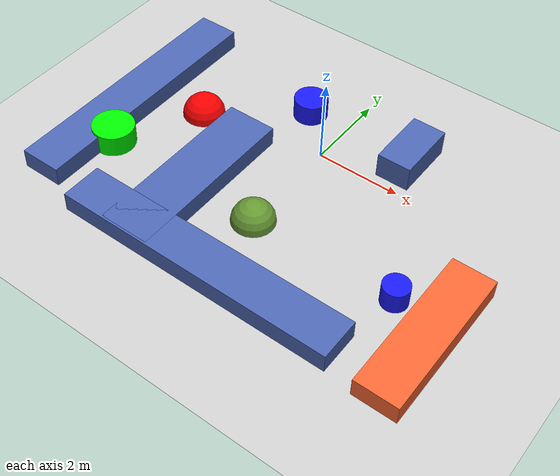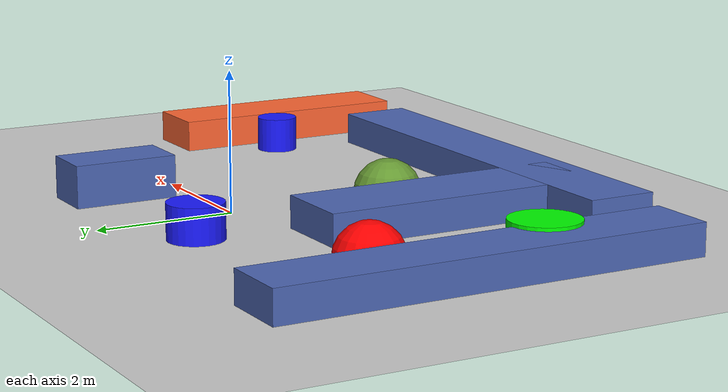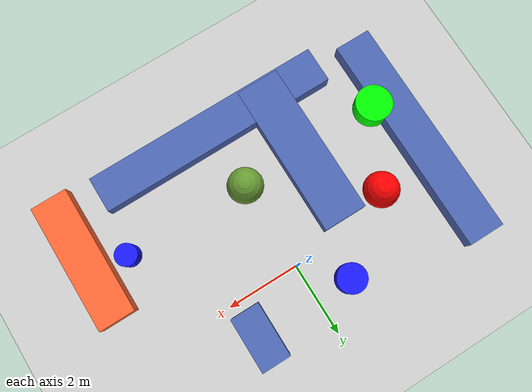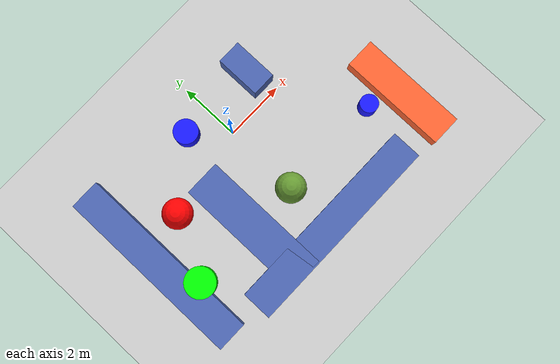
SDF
<sdf version="1.4">
 <world name="vrc_task_1">
  <scene><ambient>0.5 0.5 0.5 1.0</ambient><grid>true</grid><sky><clouds><speed>4</speed></clouds></sky></scene>
  <physics type="ode">
   <gravity>0 0 -9.81</gravity>
   <ode>
    <solver>
     <use_dynamic_moi_rescaling>true</use_dynamic_moi_rescaling>
     <type>quick</type>
     <iters>50</iters>
     <sor>1.0</sor>
    </solver>
    <constraints>
     <cfm>0.0</cfm>
     <erp>0.2</erp>
     <contact_max_correcting_vel>100.0</contact_max_correcting_vel>
     <contact_surface_layer>0.0</contact_surface_layer>
    </constraints>
   </ode>
   <real_time_update_rate>1000</real_time_update_rate>
   <max_step_size>0.001</max_step_size>
  </physics>
  <light type="directional" name="directional1">
   <pose>-6.5 -8 5 0.25 0 0</pose>
   <diffuse>1 1 1 1</diffuse>
   <specular>0.5 0.5 0.5 1</specular>
   <attenuation>
    <range>5</range>
    <constant>1</constant>
    <linear>0.01</linear>
    <quadratic>0.00</quadratic>
   </attenuation>
  </light>
  <light type="directional" name="directional2">
   <pose>-17 -2 7 0.7 0 -1.5</pose>
   <diffuse>0.5 0.5 0.5 0.5</diffuse>
   <specular>0.19 0.19 0.19 0.19</specular>
   <attenuation>
    <range>11</range>
    <constant>1</constant>
    <linear>0.01</linear>
    <quadratic>0.00</quadratic>
   </attenuation>
  </light>
  <light type="directional" name="directional3">
   <pose>-6.5 6 5 -0.7 0 0</pose>
   <diffuse>0.07 0.07 0.07 0.07</diffuse>
   <specular>0.07 0.07 0.07 0.07</specular>
   <attenuation>
    <range>10</range>
    <constant>1</constant>
    <linear>0.01</linear>
    <quadratic>0.00</quadratic>
   </attenuation>
  </light>
  <include><uri>model://ground_plane</uri></include>
  <model name="boxes">
   <link name="middle">
    <pose>-1.7 -2.5 0 0 0 0</pose>
    <collision name="collision"><geometry><box><size>1.2 4.3 0.9</size></box></geometry></collision>
    <visual name="visual">
     <geometry><box><size>1.2 4.3 0.9</size></box></geometry>
     <material>
      <ambient>0.3 0.4 0.7 1</ambient>
      <diffuse>0.3 0.4 0.7 1</diffuse>
      <specular>0.1 0.1 0.1 1</specular>
      <emissive>0 0 0 0</emissive>
     </material>
    </visual>
   </link>
   <link name="windowside">
    <pose>0 -4.2 0 0 0 0</pose>
    <collision name="collision"><geometry><box><size>2 1 0.9</size></box></geometry></collision>
    <visual name="visual">
     <geometry><box><size>6.7 1 0.9</size></box></geometry>
     <material>
      <ambient>0.5 0.3 0.1 1</ambient>
      <diffuse>0.3 0.4 0.7 1</diffuse>
      <specular>0.2 0.2 0.2 1</specular>
      <emissive>0 0 0 0</emissive>
     </material>
    </visual>
   </link>
   <link name="wallside">
    <pose>-4.5 -1.2 0 0 0 0</pose>
    <collision name="collision"><geometry><box><size>1 6.2 0.9</size></box></geometry></collision>
    <visual name="visual">
     <geometry><box><size>1 6.2 0.9</size></box></geometry>
     <material>
      <ambient>0.65 0.2 0.2 1</ambient>
      <diffuse>0.3 0.4 0.7 1</diffuse>
      <specular>0.1 0.1 0.1 1</specular>
      <emissive>0 0 0 0</emissive>
     </material>
    </visual>
   </link>
   <link name="v317A">
    <pose>4.5 -3 0 0 0 0</pose>
    <collision name="collision"><geometry><box><size>1 3.6 0.9</size></box></geometry></collision>
    <visual name="visual">
     <geometry><box><size>1 3.6 0.9</size></box></geometry>
     <material>
      <ambient>1 0.2 0.2 1</ambient>
      <diffuse>1 0.4 0.2 1</diffuse>
      <specular>0.1 0.1 0.1 1</specular>
      <emissive>0 0 0 0</emissive>
     </material>
    </visual>
   </link>
   <link name="closet1">
    <pose>1.7 1 0 0 0 0</pose>
    <collision name="collision"><geometry><box><size>1 1.5 1.2</size></box></geometry></collision>
    <visual name="visual">
     <geometry><box><size>0.8 1.5 1.2</size></box></geometry>
     <material>
      <ambient>0.85 0.3 0.05 1</ambient>
      <diffuse>0.3 0.4 0.7 1</diffuse>
      <specular>0.1 0.1 0.1 1</specular>
      <emissive>0 0 0 0</emissive>
     </material>
    </visual>
   </link>
  </model>
  <model name="spheres">
   <link name="sphere1">
    <pose>-3 -0.5 0 0 0 0</pose>
    <collision name="collision"><geometry><sphere><radius>0.5</radius></sphere></geometry></collision>
    <visual name="visual">
     <geometry><sphere><radius>0.5</radius></sphere></geometry>
     <material>
      <ambient>1 0 0 1</ambient>
      <diffuse>1 0 0 1</diffuse>
      <specular>0.1 0.1 0.1 1</specular>
      <emissive>0 0 0 0</emissive>
     </material>
    </visual>
   </link>
   <link name="sphere2">
    <pose>0 -2.5 0 0 0 0</pose>
    <collision name="collision"><geometry><sphere><radius>0.5</radius></sphere></geometry></collision>
    <visual name="visual">
     <geometry><sphere><radius>0.5</radius></sphere></geometry>
     <material>
      <ambient>0.4 0.6 0.2 1</ambient>
      <diffuse>0.4 0.6 0.2 1</diffuse>
      <specular>0.1 0.1 0.1 1</specular>
      <emissive>0 0 0 0</emissive>
     </material>
    </visual>
   </link>
  </model>
  <model name="cylinders">
   <link name="cyl1">
    <pose>-4 -2.5 0 0 0 0</pose>
    <collision name="collision"><geometry><cylinder><radius>0.5</radius></cylinder></geometry></collision>
    <visual name="visual">
     <geometry><cylinder><radius>0.5</radius></cylinder></geometry>
     <material>
      <ambient>0 1 0 1</ambient>
      <diffuse>0 1 0 1</diffuse>
      <specular>0.1 0.1 0.1 1</specular>
      <emissive>0 0 0 0</emissive>
     </material>
    </visual>
   </link>
   <link name="cyl2">
    <pose>3.5 -2.5 0 0 0 0</pose>
    <collision name="collision"><geometry><cylinder><radius>0.3</radius></cylinder></geometry></collision>
    <visual name="visual">
     <geometry><cylinder><radius>0.3</radius></cylinder></geometry>
     <material>
      <ambient>0.1 0.1 1 1</ambient>
      <diffuse>0.1 0.1 1 1</diffuse>
      <specular>0.1 0.1 0.1 1</specular>
      <emissive>0 0 0 0</emissive>
     </material>
    </visual>
   </link>
   <link name="cyl3">
    <pose>-1 1 0 0 0 0</pose>
    <collision name="collision"><geometry><cylinder><radius>0.4</radius></cylinder></geometry></collision>
    <visual name="visual">
     <geometry><cylinder><radius>0.4</radius></cylinder></geometry>
     <material>
      <ambient>0.4 0.2 0.5 1</ambient>
      <diffuse>0.1 0.1 1 1</diffuse>
      <specular>0.1 0.1 0.1 1</specular>
      <emissive>0 0 0 0</emissive>
     </material>
    </visual>
   </link>
  </model>
  <plugin name="ardupilot_sitl_gazebo_plugin" filename="libardupilot_sitl_gazebo_plugin.so">
   <UAV_MODEL>erlecopter</UAV_MODEL>
  </plugin>
 </world>
</sdf>
